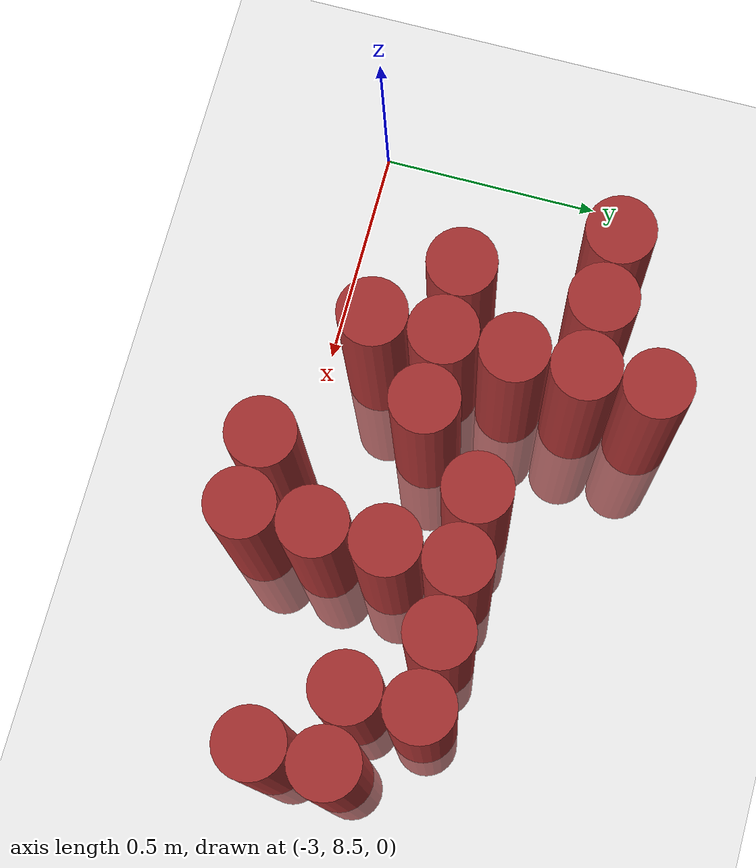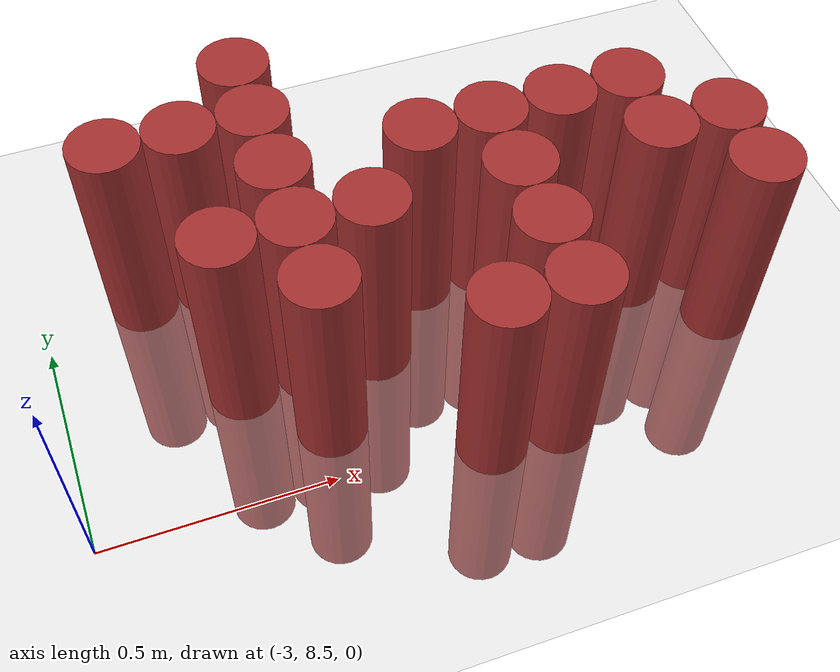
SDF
<sdf version="1.6">
 <world name="default">
  <model name="ground_plane">
   <static>1</static>
   <link name="link">
    <collision name="collision">
     <geometry><plane><normal>0 0 1</normal><size>100 100</size></plane></geometry>
     <surface><friction><ode><mu>100</mu><mu2>50</mu2></ode></friction></surface>
    </collision>
    <visual name="visual">
     <cast_shadows>0</cast_shadows>
     <geometry><plane><normal>0 0 1</normal><size>100 100</size></plane></geometry>
     <material>
      <script><uri>file://media/materials/scripts/gazebo.material</uri><name>Gazebo/Grey</name></script>
     </material>
    </visual>
   </link>
  </model>
  <model name="unit_cylinder_207">
   <static>1</static>
   <pose>-2.775000 9.075000 0.000000 0.000000 0.000000 0.000000</pose>
   <link name="link">
    <inertial>
     <mass>1</mass>
     <inertia><ixx>0.145833</ixx><ixy>0</ixy><ixz>0</ixz><iyy>0.145833</iyy><iyz>0</iyz><izz>0.125</izz></inertia>
    </inertial>
    <collision name="collision">
     <geometry><cylinder><radius>0.075000</radius><length>1</length></cylinder></geometry>
    </collision>
    <visual name="visual">
     <geometry><cylinder><radius>0.075000</radius><length>1</length></cylinder></geometry>
     <material>
      <ambient>0.648000 0.192000 0.192000 1</ambient>
      <diffuse>0.648000 0.192000 0.192000 1</diffuse>
     </material>
     <material>
      <script><name>Gazebo/Grey</name><uri>file://media/materials/scripts/gazebo.material</uri></script>
     </material>
    </visual>
    <sensor name="sensor_contact" type="contact"><contact><collision>collision</collision></contact></sensor>
   </link>
   <plugin filename="gz-sim-touchplugin-system" name="gz::sim::systems::TouchPlugin">
    <target>robot</target>
    <namespace>robot</namespace>
    <time>0.001</time>
    <enabled>true</enabled>
   </plugin>
  </model>
  <model name="unit_cylinder_208">
   <static>1</static>
   <pose>-2.625000 8.775000 0.000000 0.000000 0.000000 0.000000</pose>
   <link name="link">
    <inertial>
     <mass>1</mass>
     <inertia><ixx>0.145833</ixx><ixy>0</ixy><ixz>0</ixz><iyy>0.145833</iyy><iyz>0</iyz><izz>0.125</izz></inertia>
    </inertial>
    <collision name="collision">
     <geometry><cylinder><radius>0.075000</radius><length>1</length></cylinder></geometry>
    </collision>
    <visual name="visual">
     <geometry><cylinder><radius>0.075000</radius><length>1</length></cylinder></geometry>
     <material>
      <ambient>0.648000 0.192000 0.192000 1</ambient>
      <diffuse>0.648000 0.192000 0.192000 1</diffuse>
     </material>
     <material>
      <script><name>Gazebo/Grey</name><uri>file://media/materials/scripts/gazebo.material</uri></script>
     </material>
    </visual>
    <sensor name="sensor_contact" type="contact"><contact><collision>collision</collision></contact></sensor>
   </link>
   <plugin filename="gz-sim-touchplugin-system" name="gz::sim::systems::TouchPlugin">
    <target>robot</target>
    <namespace>robot</namespace>
    <time>0.001</time>
    <enabled>true</enabled>
   </plugin>
  </model>
  <model name="unit_cylinder_209">
   <static>1</static>
   <pose>-2.625000 9.075000 0.000000 0.000000 0.000000 0.000000</pose>
   <link name="link">
    <inertial>
     <mass>1</mass>
     <inertia><ixx>0.145833</ixx><ixy>0</ixy><ixz>0</ixz><iyy>0.145833</iyy><iyz>0</iyz><izz>0.125</izz></inertia>
    </inertial>
    <collision name="collision">
     <geometry><cylinder><radius>0.075000</radius><length>1</length></cylinder></geometry>
    </collision>
    <visual name="visual">
     <geometry><cylinder><radius>0.075000</radius><length>1</length></cylinder></geometry>
     <material>
      <ambient>0.648000 0.192000 0.192000 1</ambient>
      <diffuse>0.648000 0.192000 0.192000 1</diffuse>
     </material>
     <material>
      <script><name>Gazebo/Grey</name><uri>file://media/materials/scripts/gazebo.material</uri></script>
     </material>
    </visual>
    <sensor name="sensor_contact" type="contact"><contact><collision>collision</collision></contact></sensor>
   </link>
   <plugin filename="gz-sim-touchplugin-system" name="gz::sim::systems::TouchPlugin">
    <target>robot</target>
    <namespace>robot</namespace>
    <time>0.001</time>
    <enabled>true</enabled>
   </plugin>
  </model>
  <model name="unit_cylinder_211">
   <static>1</static>
   <pose>-2.475000 8.625000 0.000000 0.000000 0.000000 0.000000</pose>
   <link name="link">
    <inertial>
     <mass>1</mass>
     <inertia><ixx>0.145833</ixx><ixy>0</ixy><ixz>0</ixz><iyy>0.145833</iyy><iyz>0</iyz><izz>0.125</izz></inertia>
    </inertial>
    <collision name="collision">
     <geometry><cylinder><radius>0.075000</radius><length>1</length></cylinder></geometry>
    </collision>
    <visual name="visual">
     <geometry><cylinder><radius>0.075000</radius><length>1</length></cylinder></geometry>
     <material>
      <ambient>0.648000 0.192000 0.192000 1</ambient>
      <diffuse>0.648000 0.192000 0.192000 1</diffuse>
     </material>
     <material>
      <script><name>Gazebo/Grey</name><uri>file://media/materials/scripts/gazebo.material</uri></script>
     </material>
    </visual>
    <sensor name="sensor_contact" type="contact"><contact><collision>collision</collision></contact></sensor>
   </link>
   <plugin filename="gz-sim-touchplugin-system" name="gz::sim::systems::TouchPlugin">
    <target>robot</target>
    <namespace>robot</namespace>
    <time>0.001</time>
    <enabled>true</enabled>
   </plugin>
  </model>
  <model name="unit_cylinder_212">
   <static>1</static>
   <pose>-2.475000 8.775000 0.000000 0.000000 0.000000 0.000000</pose>
   <link name="link">
    <inertial>
     <mass>1</mass>
     <inertia><ixx>0.145833</ixx><ixy>0</ixy><ixz>0</ixz><iyy>0.145833</iyy><iyz>0</iyz><izz>0.125</izz></inertia>
    </inertial>
    <collision name="collision">
     <geometry><cylinder><radius>0.075000</radius><length>1</length></cylinder></geometry>
    </collision>
    <visual name="visual">
     <geometry><cylinder><radius>0.075000</radius><length>1</length></cylinder></geometry>
     <material>
      <ambient>0.648000 0.192000 0.192000 1</ambient>
      <diffuse>0.648000 0.192000 0.192000 1</diffuse>
     </material>
     <material>
      <script><name>Gazebo/Grey</name><uri>file://media/materials/scripts/gazebo.material</uri></script>
     </material>
    </visual>
    <sensor name="sensor_contact" type="contact"><contact><collision>collision</collision></contact></sensor>
   </link>
   <plugin filename="gz-sim-touchplugin-system" name="gz::sim::systems::TouchPlugin">
    <target>robot</target>
    <namespace>robot</namespace>
    <time>0.001</time>
    <enabled>true</enabled>
   </plugin>
  </model>
  <model name="unit_cylinder_213">
   <static>1</static>
   <pose>-2.475000 8.925000 0.000000 0.000000 0.000000 0.000000</pose>
   <link name="link">
    <inertial>
     <mass>1</mass>
     <inertia><ixx>0.145833</ixx><ixy>0</ixy><ixz>0</ixz><iyy>0.145833</iyy><iyz>0</iyz><izz>0.125</izz></inertia>
    </inertial>
    <collision name="collision">
     <geometry><cylinder><radius>0.075000</radius><length>1</length></cylinder></geometry>
    </collision>
    <visual name="visual">
     <geometry><cylinder><radius>0.075000</radius><length>1</length></cylinder></geometry>
     <material>
      <ambient>0.648000 0.192000 0.192000 1</ambient>
      <diffuse>0.648000 0.192000 0.192000 1</diffuse>
     </material>
     <material>
      <script><name>Gazebo/Grey</name><uri>file://media/materials/scripts/gazebo.material</uri></script>
     </material>
    </visual>
    <sensor name="sensor_contact" type="contact"><contact><collision>collision</collision></contact></sensor>
   </link>
   <plugin filename="gz-sim-touchplugin-system" name="gz::sim::systems::TouchPlugin">
    <target>robot</target>
    <namespace>robot</namespace>
    <time>0.001</time>
    <enabled>true</enabled>
   </plugin>
  </model>
  <model name="unit_cylinder_214">
   <static>1</static>
   <pose>-2.475000 9.075000 0.000000 0.000000 0.000000 0.000000</pose>
   <link name="link">
    <inertial>
     <mass>1</mass>
     <inertia><ixx>0.145833</ixx><ixy>0</ixy><ixz>0</ixz><iyy>0.145833</iyy><iyz>0</iyz><izz>0.125</izz></inertia>
    </inertial>
    <collision name="collision">
     <geometry><cylinder><radius>0.075000</radius><length>1</length></cylinder></geometry>
    </collision>
    <visual name="visual">
     <geometry><cylinder><radius>0.075000</radius><length>1</length></cylinder></geometry>
     <material>
      <ambient>0.648000 0.192000 0.192000 1</ambient>
      <diffuse>0.648000 0.192000 0.192000 1</diffuse>
     </material>
     <material>
      <script><name>Gazebo/Grey</name><uri>file://media/materials/scripts/gazebo.material</uri></script>
     </material>
    </visual>
    <sensor name="sensor_contact" type="contact"><contact><collision>collision</collision></contact></sensor>
   </link>
   <plugin filename="gz-sim-touchplugin-system" name="gz::sim::systems::TouchPlugin">
    <target>robot</target>
    <namespace>robot</namespace>
    <time>0.001</time>
    <enabled>true</enabled>
   </plugin>
  </model>
  <model name="unit_cylinder_215">
   <static>1</static>
   <pose>-2.475000 9.225000 0.000000 0.000000 0.000000 0.000000</pose>
   <link name="link">
    <inertial>
     <mass>1</mass>
     <inertia><ixx>0.145833</ixx><ixy>0</ixy><ixz>0</ixz><iyy>0.145833</iyy><iyz>0</iyz><izz>0.125</izz></inertia>
    </inertial>
    <collision name="collision">
     <geometry><cylinder><radius>0.075000</radius><length>1</length></cylinder></geometry>
    </collision>
    <visual name="visual">
     <geometry><cylinder><radius>0.075000</radius><length>1</length></cylinder></geometry>
     <material>
      <ambient>0.648000 0.192000 0.192000 1</ambient>
      <diffuse>0.648000 0.192000 0.192000 1</diffuse>
     </material>
     <material>
      <script><name>Gazebo/Grey</name><uri>file://media/materials/scripts/gazebo.material</uri></script>
     </material>
    </visual>
    <sensor name="sensor_contact" type="contact"><contact><collision>collision</collision></contact></sensor>
   </link>
   <plugin filename="gz-sim-touchplugin-system" name="gz::sim::systems::TouchPlugin">
    <target>robot</target>
    <namespace>robot</namespace>
    <time>0.001</time>
    <enabled>true</enabled>
   </plugin>
  </model>
  <model name="unit_cylinder_220">
   <static>1</static>
   <pose>-2.325000 8.775000 0.000000 0.000000 0.000000 0.000000</pose>
   <link name="link">
    <inertial>
     <mass>1</mass>
     <inertia><ixx>0.145833</ixx><ixy>0</ixy><ixz>0</ixz><iyy>0.145833</iyy><iyz>0</iyz><izz>0.125</izz></inertia>
    </inertial>
    <collision name="collision">
     <geometry><cylinder><radius>0.075000</radius><length>1</length></cylinder></geometry>
    </collision>
    <visual name="visual">
     <geometry><cylinder><radius>0.075000</radius><length>1</length></cylinder></geometry>
     <material>
      <ambient>0.648000 0.192000 0.192000 1</ambient>
      <diffuse>0.648000 0.192000 0.192000 1</diffuse>
     </material>
     <material>
      <script><name>Gazebo/Grey</name><uri>file://media/materials/scripts/gazebo.material</uri></script>
     </material>
    </visual>
    <sensor name="sensor_contact" type="contact"><contact><collision>collision</collision></contact></sensor>
   </link>
   <plugin filename="gz-sim-touchplugin-system" name="gz::sim::systems::TouchPlugin">
    <target>robot</target>
    <namespace>robot</namespace>
    <time>0.001</time>
    <enabled>true</enabled>
   </plugin>
  </model>
  <model name="unit_cylinder_224">
   <static>1</static>
   <pose>-2.175000 8.475000 0.000000 0.000000 0.000000 0.000000</pose>
   <link name="link">
    <inertial>
     <mass>1</mass>
     <inertia><ixx>0.145833</ixx><ixy>0</ixy><ixz>0</ixz><iyy>0.145833</iyy><iyz>0</iyz><izz>0.125</izz></inertia>
    </inertial>
    <collision name="collision">
     <geometry><cylinder><radius>0.075000</radius><length>1</length></cylinder></geometry>
    </collision>
    <visual name="visual">
     <geometry><cylinder><radius>0.075000</radius><length>1</length></cylinder></geometry>
     <material>
      <ambient>0.648000 0.192000 0.192000 1</ambient>
      <diffuse>0.648000 0.192000 0.192000 1</diffuse>
     </material>
     <material>
      <script><name>Gazebo/Grey</name><uri>file://media/materials/scripts/gazebo.material</uri></script>
     </material>
    </visual>
    <sensor name="sensor_contact" type="contact"><contact><collision>collision</collision></contact></sensor>
   </link>
   <plugin filename="gz-sim-touchplugin-system" name="gz::sim::systems::TouchPlugin">
    <target>robot</target>
    <namespace>robot</namespace>
    <time>0.001</time>
    <enabled>true</enabled>
   </plugin>
  </model>
  <model name="unit_cylinder_225">
   <static>1</static>
   <pose>-2.175000 8.925000 0.000000 0.000000 0.000000 0.000000</pose>
   <link name="link">
    <inertial>
     <mass>1</mass>
     <inertia><ixx>0.145833</ixx><ixy>0</ixy><ixz>0</ixz><iyy>0.145833</iyy><iyz>0</iyz><izz>0.125</izz></inertia>
    </inertial>
    <collision name="collision">
     <geometry><cylinder><radius>0.075000</radius><length>1</length></cylinder></geometry>
    </collision>
    <visual name="visual">
     <geometry><cylinder><radius>0.075000</radius><length>1</length></cylinder></geometry>
     <material>
      <ambient>0.648000 0.192000 0.192000 1</ambient>
      <diffuse>0.648000 0.192000 0.192000 1</diffuse>
     </material>
     <material>
      <script><name>Gazebo/Grey</name><uri>file://media/materials/scripts/gazebo.material</uri></script>
     </material>
    </visual>
    <sensor name="sensor_contact" type="contact"><contact><collision>collision</collision></contact></sensor>
   </link>
   <plugin filename="gz-sim-touchplugin-system" name="gz::sim::systems::TouchPlugin">
    <target>robot</target>
    <namespace>robot</namespace>
    <time>0.001</time>
    <enabled>true</enabled>
   </plugin>
  </model>
  <model name="unit_cylinder_231">
   <static>1</static>
   <pose>-2.025000 8.475000 0.000000 0.000000 0.000000 0.000000</pose>
   <link name="link">
    <inertial>
     <mass>1</mass>
     <inertia><ixx>0.145833</ixx><ixy>0</ixy><ixz>0</ixz><iyy>0.145833</iyy><iyz>0</iyz><izz>0.125</izz></inertia>
    </inertial>
    <collision name="collision">
     <geometry><cylinder><radius>0.075000</radius><length>1</length></cylinder></geometry>
    </collision>
    <visual name="visual">
     <geometry><cylinder><radius>0.075000</radius><length>1</length></cylinder></geometry>
     <material>
      <ambient>0.648000 0.192000 0.192000 1</ambient>
      <diffuse>0.648000 0.192000 0.192000 1</diffuse>
     </material>
     <material>
      <script><name>Gazebo/Grey</name><uri>file://media/materials/scripts/gazebo.material</uri></script>
     </material>
    </visual>
    <sensor name="sensor_contact" type="contact"><contact><collision>collision</collision></contact></sensor>
   </link>
   <plugin filename="gz-sim-touchplugin-system" name="gz::sim::systems::TouchPlugin">
    <target>robot</target>
    <namespace>robot</namespace>
    <time>0.001</time>
    <enabled>true</enabled>
   </plugin>
  </model>
  <model name="unit_cylinder_232">
   <static>1</static>
   <pose>-2.025000 8.625000 0.000000 0.000000 0.000000 0.000000</pose>
   <link name="link">
    <inertial>
     <mass>1</mass>
     <inertia><ixx>0.145833</ixx><ixy>0</ixy><ixz>0</ixz><iyy>0.145833</iyy><iyz>0</iyz><izz>0.125</izz></inertia>
    </inertial>
    <collision name="collision">
     <geometry><cylinder><radius>0.075000</radius><length>1</length></cylinder></geometry>
    </collision>
    <visual name="visual">
     <geometry><cylinder><radius>0.075000</radius><length>1</length></cylinder></geometry>
     <material>
      <ambient>0.648000 0.192000 0.192000 1</ambient>
      <diffuse>0.648000 0.192000 0.192000 1</diffuse>
     </material>
     <material>
      <script><name>Gazebo/Grey</name><uri>file://media/materials/scripts/gazebo.material</uri></script>
     </material>
    </visual>
    <sensor name="sensor_contact" type="contact"><contact><collision>collision</collision></contact></sensor>
   </link>
   <plugin filename="gz-sim-touchplugin-system" name="gz::sim::systems::TouchPlugin">
    <target>robot</target>
    <namespace>robot</namespace>
    <time>0.001</time>
    <enabled>true</enabled>
   </plugin>
  </model>
  <model name="unit_cylinder_233">
   <static>1</static>
   <pose>-2.025000 8.775000 0.000000 0.000000 0.000000 0.000000</pose>
   <link name="link">
    <inertial>
     <mass>1</mass>
     <inertia><ixx>0.145833</ixx><ixy>0</ixy><ixz>0</ixz><iyy>0.145833</iyy><iyz>0</iyz><izz>0.125</izz></inertia>
    </inertial>
    <collision name="collision">
     <geometry><cylinder><radius>0.075000</radius><length>1</length></cylinder></geometry>
    </collision>
    <visual name="visual">
     <geometry><cylinder><radius>0.075000</radius><length>1</length></cylinder></geometry>
     <material>
      <ambient>0.648000 0.192000 0.192000 1</ambient>
      <diffuse>0.648000 0.192000 0.192000 1</diffuse>
     </material>
     <material>
      <script><name>Gazebo/Grey</name><uri>file://media/materials/scripts/gazebo.material</uri></script>
     </material>
    </visual>
    <sensor name="sensor_contact" type="contact"><contact><collision>collision</collision></contact></sensor>
   </link>
   <plugin filename="gz-sim-touchplugin-system" name="gz::sim::systems::TouchPlugin">
    <target>robot</target>
    <namespace>robot</namespace>
    <time>0.001</time>
    <enabled>true</enabled>
   </plugin>
  </model>
  <model name="unit_cylinder_234">
   <static>1</static>
   <pose>-2.025000 8.925000 0.000000 0.000000 0.000000 0.000000</pose>
   <link name="link">
    <inertial>
     <mass>1</mass>
     <inertia><ixx>0.145833</ixx><ixy>0</ixy><ixz>0</ixz><iyy>0.145833</iyy><iyz>0</iyz><izz>0.125</izz></inertia>
    </inertial>
    <collision name="collision">
     <geometry><cylinder><radius>0.075000</radius><length>1</length></cylinder></geometry>
    </collision>
    <visual name="visual">
     <geometry><cylinder><radius>0.075000</radius><length>1</length></cylinder></geometry>
     <material>
      <ambient>0.648000 0.192000 0.192000 1</ambient>
      <diffuse>0.648000 0.192000 0.192000 1</diffuse>
     </material>
     <material>
      <script><name>Gazebo/Grey</name><uri>file://media/materials/scripts/gazebo.material</uri></script>
     </material>
    </visual>
    <sensor name="sensor_contact" type="contact"><contact><collision>collision</collision></contact></sensor>
   </link>
   <plugin filename="gz-sim-touchplugin-system" name="gz::sim::systems::TouchPlugin">
    <target>robot</target>
    <namespace>robot</namespace>
    <time>0.001</time>
    <enabled>true</enabled>
   </plugin>
  </model>
  <model name="unit_cylinder_241">
   <static>1</static>
   <pose>-1.875000 8.925000 0.000000 0.000000 0.000000 0.000000</pose>
   <link name="link">
    <inertial>
     <mass>1</mass>
     <inertia><ixx>0.145833</ixx><ixy>0</ixy><ixz>0</ixz><iyy>0.145833</iyy><iyz>0</iyz><izz>0.125</izz></inertia>
    </inertial>
    <collision name="collision">
     <geometry><cylinder><radius>0.075000</radius><length>1</length></cylinder></geometry>
    </collision>
    <visual name="visual">
     <geometry><cylinder><radius>0.075000</radius><length>1</length></cylinder></geometry>
     <material>
      <ambient>0.648000 0.192000 0.192000 1</ambient>
      <diffuse>0.648000 0.192000 0.192000 1</diffuse>
     </material>
     <material>
      <script><name>Gazebo/Grey</name><uri>file://media/materials/scripts/gazebo.material</uri></script>
     </material>
    </visual>
    <sensor name="sensor_contact" type="contact"><contact><collision>collision</collision></contact></sensor>
   </link>
   <plugin filename="gz-sim-touchplugin-system" name="gz::sim::systems::TouchPlugin">
    <target>robot</target>
    <namespace>robot</namespace>
    <time>0.001</time>
    <enabled>true</enabled>
   </plugin>
  </model>
  <model name="unit_cylinder_246">
   <static>1</static>
   <pose>-1.725000 8.775000 0.000000 0.000000 0.000000 0.000000</pose>
   <link name="link">
    <inertial>
     <mass>1</mass>
     <inertia><ixx>0.145833</ixx><ixy>0</ixy><ixz>0</ixz><iyy>0.145833</iyy><iyz>0</iyz><izz>0.125</izz></inertia>
    </inertial>
    <collision name="collision">
     <geometry><cylinder><radius>0.075000</radius><length>1</length></cylinder></geometry>
    </collision>
    <visual name="visual">
     <geometry><cylinder><radius>0.075000</radius><length>1</length></cylinder></geometry>
     <material>
      <ambient>0.648000 0.192000 0.192000 1</ambient>
      <diffuse>0.648000 0.192000 0.192000 1</diffuse>
     </material>
     <material>
      <script><name>Gazebo/Grey</name><uri>file://media/materials/scripts/gazebo.material</uri></script>
     </material>
    </visual>
    <sensor name="sensor_contact" type="contact"><contact><collision>collision</collision></contact></sensor>
   </link>
   <plugin filename="gz-sim-touchplugin-system" name="gz::sim::systems::TouchPlugin">
    <target>robot</target>
    <namespace>robot</namespace>
    <time>0.001</time>
    <enabled>true</enabled>
   </plugin>
  </model>
  <model name="unit_cylinder_247">
   <static>1</static>
   <pose>-1.725000 8.925000 0.000000 0.000000 0.000000 0.000000</pose>
   <link name="link">
    <inertial>
     <mass>1</mass>
     <inertia><ixx>0.145833</ixx><ixy>0</ixy><ixz>0</ixz><iyy>0.145833</iyy><iyz>0</iyz><izz>0.125</izz></inertia>
    </inertial>
    <collision name="collision">
     <geometry><cylinder><radius>0.075000</radius><length>1</length></cylinder></geometry>
    </collision>
    <visual name="visual">
     <geometry><cylinder><radius>0.075000</radius><length>1</length></cylinder></geometry>
     <material>
      <ambient>0.648000 0.192000 0.192000 1</ambient>
      <diffuse>0.648000 0.192000 0.192000 1</diffuse>
     </material>
     <material>
      <script><name>Gazebo/Grey</name><uri>file://media/materials/scripts/gazebo.material</uri></script>
     </material>
    </visual>
    <sensor name="sensor_contact" type="contact"><contact><collision>collision</collision></contact></sensor>
   </link>
   <plugin filename="gz-sim-touchplugin-system" name="gz::sim::systems::TouchPlugin">
    <target>robot</target>
    <namespace>robot</namespace>
    <time>0.001</time>
    <enabled>true</enabled>
   </plugin>
  </model>
  <model name="unit_cylinder_252">
   <static>1</static>
   <pose>-1.575000 8.625000 0.000000 0.000000 0.000000 0.000000</pose>
   <link name="link">
    <inertial>
     <mass>1</mass>
     <inertia><ixx>0.145833</ixx><ixy>0</ixy><ixz>0</ixz><iyy>0.145833</iyy><iyz>0</iyz><izz>0.125</izz></inertia>
    </inertial>
    <collision name="collision">
     <geometry><cylinder><radius>0.075000</radius><length>1</length></cylinder></geometry>
    </collision>
    <visual name="visual">
     <geometry><cylinder><radius>0.075000</radius><length>1</length></cylinder></geometry>
     <material>
      <ambient>0.648000 0.192000 0.192000 1</ambient>
      <diffuse>0.648000 0.192000 0.192000 1</diffuse>
     </material>
     <material>
      <script><name>Gazebo/Grey</name><uri>file://media/materials/scripts/gazebo.material</uri></script>
     </material>
    </visual>
    <sensor name="sensor_contact" type="contact"><contact><collision>collision</collision></contact></sensor>
   </link>
   <plugin filename="gz-sim-touchplugin-system" name="gz::sim::systems::TouchPlugin">
    <target>robot</target>
    <namespace>robot</namespace>
    <time>0.001</time>
    <enabled>true</enabled>
   </plugin>
  </model>
  <model name="unit_cylinder_253">
   <static>1</static>
   <pose>-1.575000 8.775000 0.000000 0.000000 0.000000 0.000000</pose>
   <link name="link">
    <inertial>
     <mass>1</mass>
     <inertia><ixx>0.145833</ixx><ixy>0</ixy><ixz>0</ixz><iyy>0.145833</iyy><iyz>0</iyz><izz>0.125</izz></inertia>
    </inertial>
    <collision name="collision">
     <geometry><cylinder><radius>0.075000</radius><length>1</length></cylinder></geometry>
    </collision>
    <visual name="visual">
     <geometry><cylinder><radius>0.075000</radius><length>1</length></cylinder></geometry>
     <material>
      <ambient>0.648000 0.192000 0.192000 1</ambient>
      <diffuse>0.648000 0.192000 0.192000 1</diffuse>
     </material>
     <material>
      <script><name>Gazebo/Grey</name><uri>file://media/materials/scripts/gazebo.material</uri></script>
     </material>
    </visual>
    <sensor name="sensor_contact" type="contact"><contact><collision>collision</collision></contact></sensor>
   </link>
   <plugin filename="gz-sim-touchplugin-system" name="gz::sim::systems::TouchPlugin">
    <target>robot</target>
    <namespace>robot</namespace>
    <time>0.001</time>
    <enabled>true</enabled>
   </plugin>
  </model>
 </world>
</sdf>
